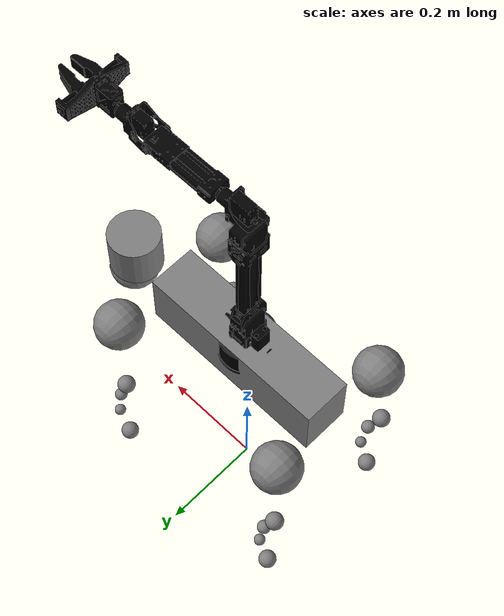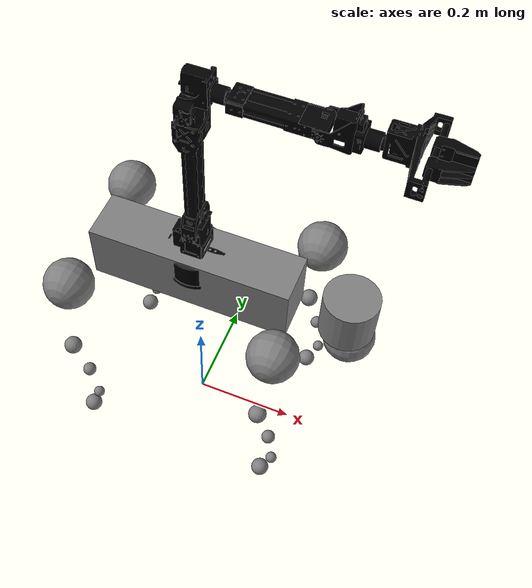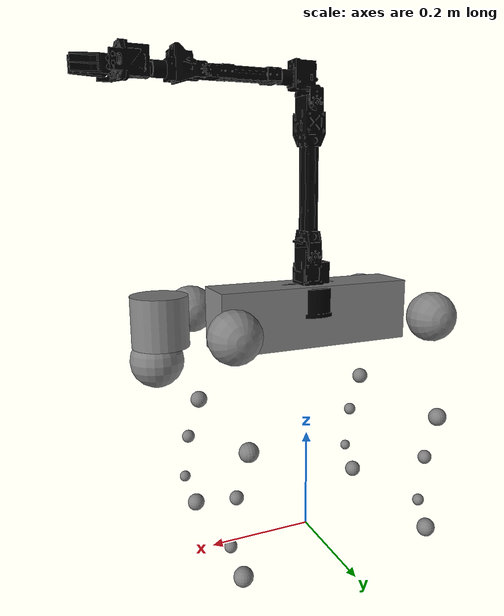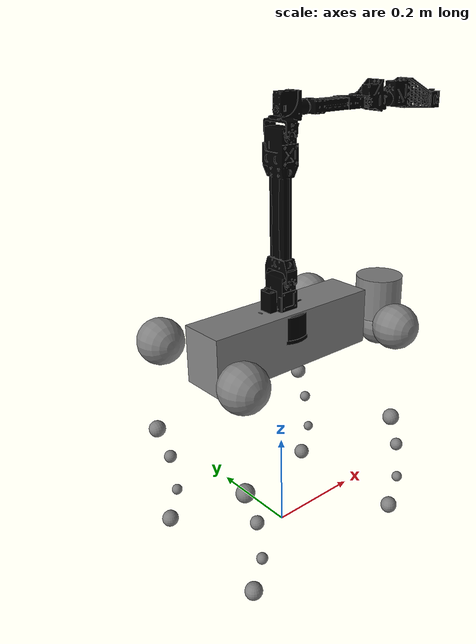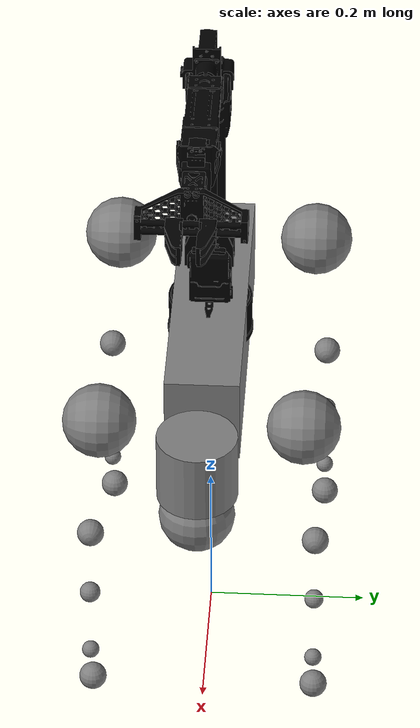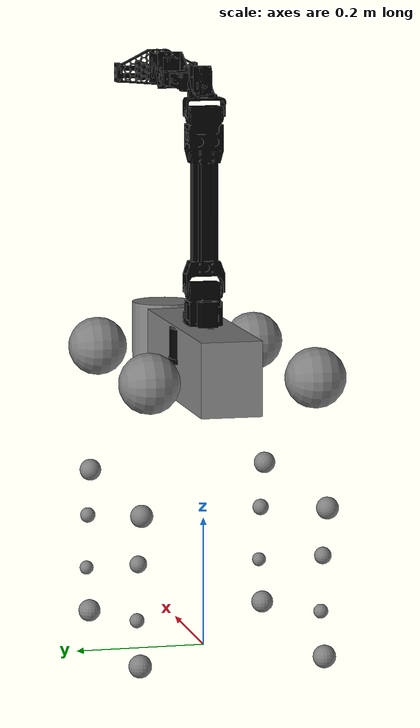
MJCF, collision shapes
<mujoco model="go2">
  <compiler angle="radian" meshdir="assets" autolimits="true"/>

  <option cone="pyramidal" impratio="100" iterations="1" ls_iterations="5">
    <flag eulerdamp="disable"/>
  </option>

  <default>
    <default class="go2">
      <geom friction="0.6" margin="0.001" condim="1"/>
      <joint axis="0 1 0" damping="2" armature="0.01"/>
      <general forcerange="-24 24" biastype="affine" gainprm="50 0 0" biasprm="0 -50 -0.5"/>

      <default class="abduction">
        <joint axis="1 0 0" range="-1.0472 1.0472"/>
        <general ctrlrange="-0.9472 0.9472"/>
      </default>
      <default class="hip">
        <joint range="-1.5708 3.4907"/>
        <general ctrlrange="-1.4 2.5"/>
      </default>
      <default class="knee">
        <joint range="-2.7227 -0.83776"/>
        <general ctrlrange="-2.6227 -0.84776"/>
      </default>
      <default class="visual">
        <geom type="mesh" contype="0" conaffinity="0" group="2"/>
      </default>
      <default class="go2foot">
        <site group="1" pos="-0.002 0 -0.213"/>
        <geom rgba="0.231373 0.380392 0.705882 1"/>
      </default>
      <default class="collision">
        <geom group="3"/>
        <default class="foot">
          <geom size="0.0175" pos="-0.002 0 -0.213" priority="1" solimp="0.015 1 0.031" condim="6"
            friction="0.8 0.02 0.01"/>
        </default>
      </default>
    </default>

    <default class="arm">
      <joint damping="0.1" armature="0.01"/>
    </default>
    <default class="gripper">
      <joint damping="0.01" armature="0.001"/>
    </default>
  </default>

  <asset>
    <material name="metal" rgba=".9 .95 .95 1"/>
    <material name="black" rgba="0 0 0 1"/>
    <material name="white" rgba="1 1 1 1"/>
    <material name="gray" rgba="0.671705 0.692426 0.774270 1"/>

    <mesh file="base_0.obj"/>
    <mesh file="base_1.obj"/>
    <mesh file="base_2.obj"/>
    <mesh file="base_3.obj"/>
    <mesh file="base_4.obj"/>
    <mesh file="hip_0.obj"/>
    <mesh file="hip_1.obj"/>
    <mesh file="thigh_0.obj"/>
    <mesh file="thigh_1.obj"/>
    <mesh file="thigh_mirror_0.obj"/>
    <mesh file="thigh_mirror_1.obj"/>
    <mesh file="calf_0.obj"/>
    <mesh file="calf_1.obj"/>
    <mesh file="calf_mirror_0.obj"/>
    <mesh file="calf_mirror_1.obj"/>
    <mesh file="foot.obj"/>

    <mesh file="base_link.obj"/>
    <mesh file="Link1.obj"/>
    <mesh file="Link2.obj"/>
    <mesh file="Link3.obj"/>
    <mesh file="Link4.obj"/>
    <mesh file="Link5.obj"/>
    <mesh file="Link6.obj"/>
    <mesh file="Link7_1.obj"/>
    <mesh file="Link7_2.obj"/>
  </asset>

  <worldbody>
    <body name="base" pos="0 0 0.445" childclass="go2">
      <camera name="track" pos="0.846 -1.465 0.916" xyaxes="0.866 0.500 0.000 -0.171 0.296 0.940" mode="trackcom"/>
      <inertial pos="0.021112 0 -0.005366" quat="-0.000543471 0.713435 -0.00173769 0.700719" mass="6.921"
        diaginertia="0.107027 0.0980771 0.0244531"/>
      <freejoint/>
      <geom mesh="base_0" material="black" class="visual"/>
      <geom mesh="base_1" material="black" class="visual"/>
      <geom mesh="base_2" material="black" class="visual"/>
      <geom mesh="base_3" material="white" class="visual"/>
      <geom mesh="base_4" material="gray" class="visual"/>

      <geom name="base1_collision" size="0.1881 0.04675 0.057" type="box" class="collision" />
      <geom name="base2_collision" size="0.05 0.045" pos="0.285 0 0.01" type="cylinder" class="collision" />
      <geom name="base3_collision" size="0.047" pos="0.293 0 -0.06" type="sphere" class="collision" />

      <site name="imu" pos="-0.02557 0 0.04232"/>
      <body name="FL_hip" pos="0.1934 0.0465 0">
        <inertial pos="-0.0054 0.00194 -0.000105" quat="0.497014 0.499245 0.505462 0.498237" mass="0.678"
          diaginertia="0.00088403 0.000596003 0.000479967"/>
        <joint name="FL_hip_joint" class="abduction"/>
        <geom mesh="hip_0" material="metal" class="visual"/>
        <geom mesh="hip_1" material="gray" class="visual"/>
        <geom size="0.046 0.02" pos="0 0.08 0" quat="1 1 0 0" class="collision"/>
        <body name="FL_thigh" pos="0 0.0955 0">
          <inertial pos="-0.00374 -0.0223 -0.0327" quat="0.829533 0.0847635 -0.0200632 0.551623" mass="1.152"
            diaginertia="0.00594973 0.00584149 0.000878787"/>
          <joint name="FL_thigh_joint" class="hip"/>
          <geom mesh="thigh_0" material="metal" class="visual"/>
          <geom mesh="thigh_1" material="gray" class="visual"/>
          <geom size="0.017 0.01225 0.017" pos="-0.015 0 -0.1955" quat="0.707107 0 0.707107 0" class="collision"/>
          <body name="FL_calf" pos="0 0 -0.213">
            <inertial pos="0.00629595 -0.000622121 -0.141417" quat="0.710672 0.00154099 -0.00450087 0.703508"
              mass="0.241352" diaginertia="0.0014901 0.00146356 5.31397e-05"/>
            <joint name="FL_calf_joint" class="knee"/>
            <geom mesh="calf_0" material="gray" class="visual"/>
            <geom mesh="calf_1" material="black" class="visual"/>
            <geom size="0.012 0.06" pos="0.008 0 -0.06" quat="0.994493 0 -0.104807 0" class="collision"/>
            <geom size="0.011 0.0325" pos="0.02 0 -0.148" quat="0.999688 0 0.0249974 0" class="collision"/>
            <geom pos="0 0 -0.213" mesh="foot" class="visual" material="black"/>
            <geom name="FL" class="foot"/>
            <site name="FL_foot" class="go2foot"/>
          </body>
        </body>
      </body>
      <body name="FR_hip" pos="0.1934 -0.0465 0">
        <inertial pos="-0.0054 -0.00194 -0.000105" quat="0.498237 0.505462 0.499245 0.497014" mass="0.678"
          diaginertia="0.00088403 0.000596003 0.000479967"/>
        <joint name="FR_hip_joint" class="abduction"/>
        <geom mesh="hip_0" material="metal" class="visual" quat="4.63268e-05 1 0 0"/>
        <geom mesh="hip_1" material="gray" class="visual" quat="4.63268e-05 1 0 0"/>
        <geom size="0.046 0.02" pos="0 -0.08 0" quat="0.707107 0.707107 0 0" class="collision"/>
        <body name="FR_thigh" pos="0 -0.0955 0">
          <inertial pos="-0.00374 0.0223 -0.0327" quat="0.551623 -0.0200632 0.0847635 0.829533" mass="1.152"
            diaginertia="0.00594973 0.00584149 0.000878787"/>
          <joint name="FR_thigh_joint" class="hip"/>
          <geom mesh="thigh_mirror_0" material="metal" class="visual"/>
          <geom mesh="thigh_mirror_1" material="gray" class="visual"/>
          <geom size="0.017 0.01225 0.017" pos="-0.015 0 -0.1955" quat="0.707107 0 0.707107 0" class="collision"/>
          <body name="FR_calf" pos="0 0 -0.213">
            <inertial pos="0.00629595 0.000622121 -0.141417" quat="0.703508 -0.00450087 0.00154099 0.710672"
              mass="0.241352" diaginertia="0.0014901 0.00146356 5.31397e-05"/>
            <joint name="FR_calf_joint" class="knee"/>
            <geom mesh="calf_mirror_0" material="gray" class="visual"/>
            <geom mesh="calf_mirror_1" material="black" class="visual"/>
            <geom size="0.013 0.06" pos="0.01 0 -0.06" quat="0.995004 0 -0.0998334 0" class="collision"/>
            <geom size="0.011 0.0325" pos="0.02 0 -0.148" quat="0.999688 0 0.0249974 0" class="collision"/>
            <geom pos="0 0 -0.213" mesh="foot" class="visual" material="black"/>
            <geom name="FR" class="foot"/>
            <site name="FR_foot" class="go2foot"/>
          </body>
        </body>
      </body>
      <body name="RL_hip" pos="-0.1934 0.0465 0">
        <inertial pos="0.0054 0.00194 -0.000105" quat="0.505462 0.498237 0.497014 0.499245" mass="0.678"
          diaginertia="0.00088403 0.000596003 0.000479967"/>
        <joint name="RL_hip_joint" class="abduction"/>
        <geom mesh="hip_0" material="metal" class="visual" quat="4.63268e-05 0 1 0"/>
        <geom mesh="hip_1" material="gray" class="visual" quat="4.63268e-05 0 1 0"/>
        <geom size="0.046 0.02" pos="0 0.08 0" quat="0.707107 0.707107 0 0" class="collision"/>
        <body name="RL_thigh" pos="0 0.0955 0">
          <inertial pos="-0.00374 -0.0223 -0.0327" quat="0.829533 0.0847635 -0.0200632 0.551623" mass="1.152"
            diaginertia="0.00594973 0.00584149 0.000878787"/>
          <joint name="RL_thigh_joint" class="hip"/>
          <geom mesh="thigh_0" material="metal" class="visual"/>
          <geom mesh="thigh_1" material="gray" class="visual"/>
          <geom size="0.017 0.01225 0.017" pos="-0.015 0 -0.1955" quat="0.707107 0 0.707107 0" class="collision"/>
          <body name="RL_calf" pos="0 0 -0.213">
            <inertial pos="0.00629595 -0.000622121 -0.141417" quat="0.710672 0.00154099 -0.00450087 0.703508"
              mass="0.241352" diaginertia="0.0014901 0.00146356 5.31397e-05"/>
            <joint name="RL_calf_joint" class="knee"/>
            <geom mesh="calf_0" material="gray" class="visual"/>
            <geom mesh="calf_1" material="black" class="visual"/>
            <geom size="0.013 0.06" pos="0.01 0 -0.06" quat="0.995004 0 -0.0998334 0" class="collision"/>
            <geom size="0.011 0.0325" pos="0.02 0 -0.148" quat="0.999688 0 0.0249974 0" class="collision"/>
            <geom pos="0 0 -0.213" mesh="foot" class="visual" material="black"/>
            <geom name="RL" class="foot"/>
            <site name="RL_foot" class="go2foot"/>
          </body>
        </body>
      </body>
      <body name="RR_hip" pos="-0.1934 -0.0465 0">
        <inertial pos="0.0054 -0.00194 -0.000105" quat="0.499245 0.497014 0.498237 0.505462" mass="0.678"
          diaginertia="0.00088403 0.000596003 0.000479967"/>
        <joint name="RR_hip_joint" class="abduction"/>
        <geom mesh="hip_0" material="metal" class="visual" quat="2.14617e-09 4.63268e-05 4.63268e-05 -1"/>
        <geom mesh="hip_1" material="gray" class="visual" quat="2.14617e-09 4.63268e-05 4.63268e-05 -1"/>
        <geom size="0.046 0.02" pos="0 -0.08 0" quat="0.707107 0.707107 0 0" class="collision"/>
        <body name="RR_thigh" pos="0 -0.0955 0">
          <inertial pos="-0.00374 0.0223 -0.0327" quat="0.551623 -0.0200632 0.0847635 0.829533" mass="1.152"
            diaginertia="0.00594973 0.00584149 0.000878787"/>
          <joint name="RR_thigh_joint" class="hip"/>
          <geom mesh="thigh_mirror_0" material="metal" class="visual"/>
          <geom mesh="thigh_mirror_1" material="gray" class="visual"/>
          <geom size="0.017 0.01225 0.017" pos="-0.015 0 -0.1955" quat="0.707107 0 0.707107 0" class="collision"/>
          <body name="RR_calf" pos="0 0 -0.213">
            <inertial pos="0.00629595 0.000622121 -0.141417" quat="0.703508 -0.00450087 0.00154099 0.710672"
              mass="0.241352" diaginertia="0.0014901 0.00146356 5.31397e-05"/>
            <joint name="RR_calf_joint" class="knee"/>
            <geom mesh="calf_mirror_0" material="gray" class="visual"/>
            <geom mesh="calf_mirror_1" material="black" class="visual"/>
            <geom size="0.013 0.06" pos="0.01 0 -0.06" quat="0.995004 0 -0.0998334 0" class="collision"/>
            <geom size="0.011 0.0325" pos="0.02 0 -0.148" quat="0.999688 0 0.0249974 0" class="collision"/>
            <geom pos="0 0 -0.213" mesh="foot" class="visual" material="black"/>
            <geom name="RR" class="foot"/>
            <site name="RR_foot" class="go2foot"/>
          </body>
        </body>
      </body>

      <geom type="mesh" material="black" mesh="base_link"/>
      <geom class="collision" mesh="base_link"/>
      <body name="Link1" pos="0 0 0.0533" quat="-3.67321e-06 0 0 -1">
        <inertial pos="0.0024649 0.00010517 0.032696" quat="0.999717 -0.0236435 -0.00169588 -0.00221682" mass="0.13174" diaginertia="6.72365e-05 5.41766e-05 4.66199e-05"/>
        <joint name="Joint1" class="arm" pos="0 0 0" axis="0 0 1" range="-2.356 2.356"/>
        <geom type="mesh" material="black" mesh="Link1"/>
        <geom class="collision" mesh="Link1"/>
        <body name="Link2" pos="0 0.028 0.0563" quat="-2.59734e-06 -2.59735e-06 -0.707108 -0.707105">
          <inertial pos="0.0002018 0.19201 -0.027007" quat="0.706347 0.707865 -0.00093681 0.00051949" mass="0.20213" diaginertia="0.00025682 0.000229681 6.33062e-05"/>
          <joint name="Joint2" class="arm" pos="0 0 0" axis="0 0 -1" range="-1.571 1.571"/>
          <geom type="mesh" material="black" mesh="Link2"/>
          <geom class="collision" mesh="Link2"/>
          <body name="Link3" pos="0 0.2693 0.0009">
            <inertial pos="0.015164 0.044482 -0.027461" quat="0.690744 0.690771 -0.151176 -0.151179" mass="0.0629" diaginertia="1.84718e-05 1.4964e-05 1.13662e-05"/>
            <joint name="Joint3" class="arm" pos="0 0 0" axis="0 0 -1" range="-1.571 1.571"/>
            <geom type="mesh" material="black" mesh="Link3"/>
            <geom class="collision" mesh="Link3"/>
            <body name="Link4" pos="0.0577 0.042 -0.0275" quat="0.499998 -0.5 0.500002 -0.5">
              <inertial pos="-0.00029556 -0.00016104 0.091339" quat="0.999998 -3.46195e-05 0.00170171 0.00102754" mass="0.083332" diaginertia="3.93083e-05 3.4378e-05 1.15967e-05"/>
              <joint name="Joint4" class="arm" pos="0 0 0" axis="0 0 1" range="-2.356 2.356"/>
              <geom type="mesh" material="black" mesh="Link4"/>
              <geom class="collision" mesh="Link4"/>
              <body name="Link5" pos="-0.0001 -0.0237 0.14018" quat="0.499998 0.5 -0.5 0.500002">
                <inertial pos="0.040573 0.0062891 -0.023838" quat="0.706153 0.706691 -0.0310982 -0.0311281" mass="0.053817" diaginertia="1.31069e-05 1.1049e-05 8.59523e-06"/>
                <joint name="Joint5" class="arm" pos="0 0 0" axis="0 0 -1" range="-1.571 1.571"/>
                <geom type="mesh" material="black" mesh="Link5"/>
                <geom class="collision" mesh="Link5"/>
                <body name="Link6" pos="0.0825 -0.0010782 -0.023822" quat="0.499998 -0.5 0.500002 -0.5">
                  <inertial pos="-0.0068528 -3.9973e-06 0.039705" quat="0.494949 0.495288 -0.504676 0.504992" mass="0.077892" diaginertia="4.8843e-05 3.8232e-05 1.7707e-05"/>
                  <joint name="Joint6" class="arm" pos="0 0 0" axis="0 0 -1" range="-2.356 2.356"/>
                  <geom type="mesh" material="black" mesh="Link6"/>
                  <geom class="collision" mesh="Link6"/>

                  <body name="Link7_1" pos="-0.0056012 -0.029636 0.0706" quat="0.499848 -0.50015 -0.49985 -0.500152">
                    <inertial pos="0.018927 0.006 0.012082" quat="0 0.677073 0 0.735916" mass="0.015046" diaginertia="2.62715e-06 2.0229e-06 1.25975e-06"/>
                    <joint name="Joint7_1" class="gripper" pos="0 0 0" axis="0 0 -1" type="slide" range="0 0.0325"/>
                    <geom type="mesh" material="black" mesh="Link7_1"/>
                    <geom class="collision" mesh="Link7_1" margin="0"/>
                  </body>
                  <body name="Link7_2" pos="-0.0056388 0.02964 0.0706" quat="0.500148 0.49985 -0.50015 0.499852">
                    <inertial pos="0.018927 -0.006 0.012082" quat="0 0.677073 0 0.735916" mass="0.015046" diaginertia="2.62715e-06 2.0229e-06 1.25975e-06"/>
                    <joint name="Joint7_2" class="gripper" pos="0 0 0" axis="0 0 1" type="slide" range="-0.0325 0"/>
                    <geom type="mesh" material="black" mesh="Link7_2"/>
                    <geom class="collision" mesh="Link7_2" margin="0"/>
                  </body>
                </body>
              </body>
            </body>
          </body>
        </body>
      </body>
    </body>
  </worldbody>

  <actuator>
    <general class="abduction" name="FL_hip" joint="FL_hip_joint"/>
    <general class="hip" name="FL_thigh" joint="FL_thigh_joint"/>
    <general class="knee" name="FL_calf" joint="FL_calf_joint"/>
    <general class="abduction" name="FR_hip" joint="FR_hip_joint"/>
    <general class="hip" name="FR_thigh" joint="FR_thigh_joint"/>
    <general class="knee" name="FR_calf" joint="FR_calf_joint"/>
    <general class="abduction" name="RL_hip" joint="RL_hip_joint"/>
    <general class="hip" name="RL_thigh" joint="RL_thigh_joint"/>
    <general class="knee" name="RL_calf" joint="RL_calf_joint"/>
    <general class="abduction" name="RR_hip" joint="RR_hip_joint"/>
    <general class="hip" name="RR_thigh" joint="RR_thigh_joint"/>
    <general class="knee" name="RR_calf" joint="RR_calf_joint"/>

    <general name="arm_joint1" joint="Joint1" forcerange="-3.3 3.3" ctrlrange="-2.356 2.356"/>
    <general name="arm_joint2" joint="Joint2" forcerange="-3.3 3.3" ctrlrange="-1.571 1.571"/>
    <general name="arm_joint3" joint="Joint3" forcerange="-1.7 1.7" ctrlrange="-1.571 1.571"/>
    <general name="arm_joint4" joint="Joint4" forcerange="-1.7 1.7" ctrlrange="-2.356 2.356"/>
    <general name="arm_joint5" joint="Joint5" forcerange="-1.7 1.7" ctrlrange="-1.571 1.571"/>
    <general name="arm_joint6" joint="Joint6" forcerange="-1.7 1.7" ctrlrange="-2.356 2.356"/>
    <general name="arm_gripper_1" joint="Joint7_1" forcerange="-1.7 1.7" ctrlrange="0 0.0325"/>
    <general name="arm_gripper_2" joint="Joint7_2" forcerange="-1.7 1.7" ctrlrange="-0.0325 0"/>
  </actuator>

  <sensor>
    <jointpos joint="FL_hip_joint" name="abduction_front_left_pos"/>
    <jointpos joint="FL_thigh_joint" name="hip_front_left_pos"/>
    <jointpos joint="FL_calf_joint" name="knee_front_left_pos"/>
    <jointpos joint="RL_hip_joint" name="abduction_hind_left_pos"/>
    <jointpos joint="RL_thigh_joint" name="hip_hind_left_pos"/>
    <jointpos joint="RL_calf_joint" name="knee_hind_left_pos"/>
    <jointpos joint="FR_hip_joint" name="abduction_front_right_pos"/>
    <jointpos joint="FR_thigh_joint" name="hip_front_right_pos"/>
    <jointpos joint="FR_calf_joint" name="knee_front_right_pos"/>
    <jointpos joint="RR_hip_joint" name="abduction_hind_right_pos"/>
    <jointpos joint="RR_thigh_joint" name="hip_hind_right_pos"/>
    <jointpos joint="RR_calf_joint" name="knee_hind_right_pos"/>
    <jointvel joint="FL_hip_joint" name="abduction_front_left_vel"/>
    <jointvel joint="FL_thigh_joint" name="hip_front_left_vel"/>
    <jointvel joint="FL_calf_joint" name="knee_front_left_vel"/>
    <jointvel joint="RL_hip_joint" name="abduction_hind_left_vel"/>
    <jointvel joint="RL_thigh_joint" name="hip_hind_left_vel"/>
    <jointvel joint="RL_calf_joint" name="knee_hind_left_vel"/>
    <jointvel joint="FR_hip_joint" name="abduction_front_right_vel"/>
    <jointvel joint="FR_thigh_joint" name="hip_front_right_vel"/>
    <jointvel joint="FR_calf_joint" name="knee_front_right_vel"/>
    <jointvel joint="RR_hip_joint" name="abduction_hind_right_vel"/>
    <jointvel joint="RR_thigh_joint" name="hip_hind_right_vel"/>
    <jointvel joint="RR_calf_joint" name="knee_hind_right_vel"/>
    <gyro site="imu" name="gyro"/>
    <accelerometer site="imu" name="accelerometer"/>
    <framequat objtype="site" objname="imu" name="orientation"/>
    <framepos objtype="site" objname="imu" name="global_position"/>
    <framelinvel objtype="site" objname="imu" name="global_linvel"/>
    <frameangvel objtype="site" objname="imu" name="global_angvel"/>

    <jointpos joint="Joint1" name="arm_joint1_pos"/>
    <jointpos joint="Joint2" name="arm_joint2_pos"/>
    <jointpos joint="Joint3" name="arm_joint3_pos"/>
    <jointpos joint="Joint4" name="arm_joint4_pos"/>
    <jointpos joint="Joint5" name="arm_joint5_pos"/>
    <jointpos joint="Joint6" name="arm_joint6_pos"/>
    <jointpos joint="Joint7_1" name="arm_gripper_1_pos"/>
    <jointpos joint="Joint7_2" name="arm_gripper_2_pos"/>

    <jointvel joint="Joint1" name="arm_joint1_vel"/>
    <jointvel joint="Joint2" name="arm_joint2_vel"/>
    <jointvel joint="Joint3" name="arm_joint3_vel"/>
    <jointvel joint="Joint4" name="arm_joint4_vel"/>
    <jointvel joint="Joint5" name="arm_joint5_vel"/>
    <jointvel joint="Joint6" name="arm_joint6_vel"/>
    <jointvel joint="Joint7_1" name="arm_gripper_1_vel"/>
    <jointvel joint="Joint7_2" name="arm_gripper_2_vel"/>
  </sensor>

  <keyframe>
    <key name="home" qpos="0 0 0.27 1 0 0 0 0 0.9 -1.8 0 0.9 -1.8 0 0.9 -1.8 0 0.9 -1.8 0 -1.571 1.571 0 0 0 0 0"
      ctrl="0 0.9 -1.8 0 0.9 -1.8 0 0.9 -1.8 0 0.9 -1.8 0 -1.571 1.571 0 0 0 0 0"/>
  </keyframe>
</mujoco>
